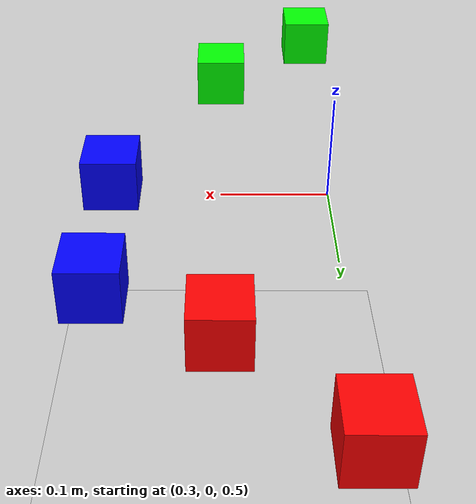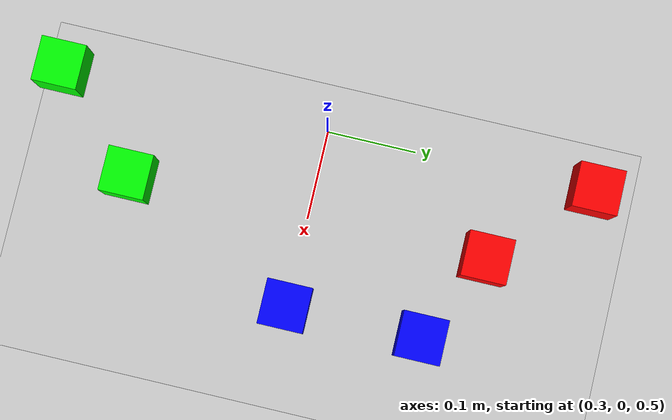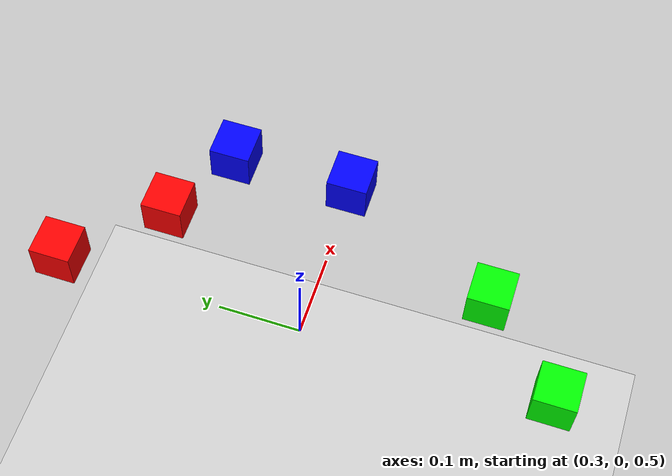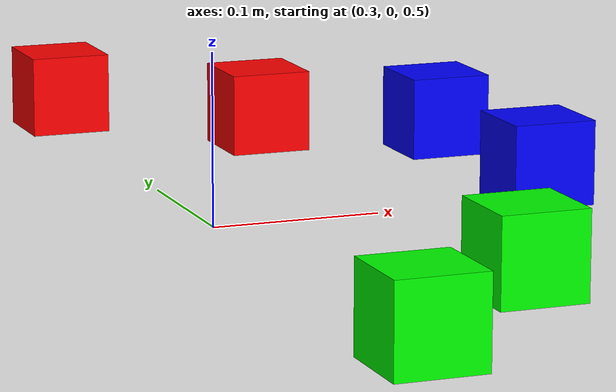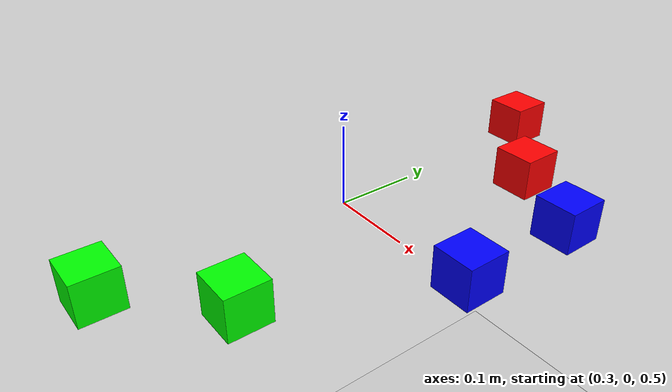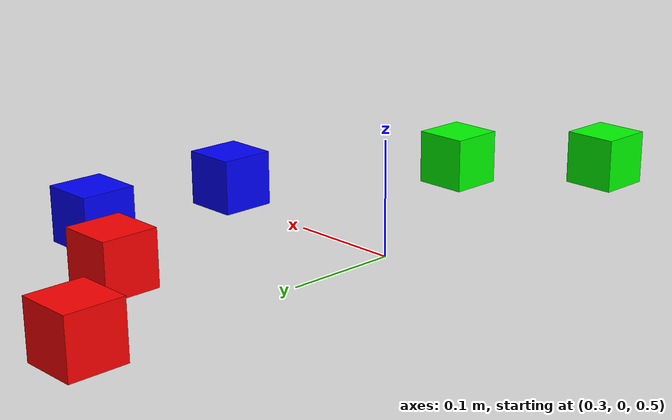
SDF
<?xml version="1.0" ?>
<sdf version="1.7">
  <world name="default">
    <!-- gravity is on by default, but being explicit is fine -->
    <gravity>0 0 -9.81</gravity>

    <!-- Light -->
    <include>
      <uri>https://fuel.gazebosim.org/1.0/openrobotics/models/Sun</uri>
    </include>

    <!-- Static floor with collision -->
    <include>
      <uri>https://fuel.gazebosim.org/1.0/openrobotics/models/Ground Plane</uri>
    </include>

  <gui fullscreen="0">
    <camera name="user_camera">
      <!-- x y z roll pitch yaw -->
      <pose>1.2 -0.8 1.0 0 0.35 2.4</pose>
    </camera>
  </gui>

    <!-- 5x5x5 cm cubes around the robot in alternating RGB -->
    <model name="cube_red_1">
      <static>false</static>
      <pose>0.4 0.2 0.525 0 0 0</pose>
      <link name="link">
        <inertial><mass>0.05</mass></inertial>
        <collision name="col"><geometry><box><size>0.05 0.05 0.05</size></box></geometry></collision>
        <visual name="vis"><geometry><box><size>0.05 0.05 0.05</size></box></geometry>
          <material><ambient>1 0 0 1</ambient><diffuse>1 0 0 1</diffuse></material>
        </visual>
      </link>
    </model>

    <model name="cube_green_1">
      <static>false</static>
      <pose>0.4 -0.2 0.525 0 0 0</pose>
      <link name="link">
        <inertial><mass>0.05</mass></inertial>
        <collision name="col"><geometry><box><size>0.05 0.05 0.05</size></box></geometry></collision>
        <visual name="vis"><geometry><box><size>0.05 0.05 0.05</size></box></geometry>
          <material><ambient>0 1 0 1</ambient><diffuse>0 1 0 1</diffuse></material>
        </visual>
      </link>
    </model>

    <model name="cube_blue_1">
      <static>false</static>
      <pose>0.5 0.0 0.525 0 0 0</pose>
      <link name="link">
        <inertial><mass>0.05</mass></inertial>
        <collision name="col"><geometry><box><size>0.05 0.05 0.05</size></box></geometry></collision>
        <visual name="vis"><geometry><box><size>0.05 0.05 0.05</size></box></geometry>
          <material><ambient>0 0 1 1</ambient><diffuse>0 0 1 1</diffuse></material>
        </visual>
      </link>
    </model>

    <model name="cube_red_2">
      <static>false</static>
      <pose>0.3 0.3 0.525 0 0 0</pose>
      <link name="link">
        <inertial><mass>0.05</mass></inertial>
        <collision name="col"><geometry><box><size>0.05 0.05 0.05</size></box></geometry></collision>
        <visual name="vis"><geometry><box><size>0.05 0.05 0.05</size></box></geometry>
          <material><ambient>1 0 0 1</ambient><diffuse>1 0 0 1</diffuse></material>
        </visual>
      </link>
    </model>

    <model name="cube_green_2">
      <static>false</static>
      <pose>0.3 -0.3 0.525 0 0 0</pose>
      <link name="link">
        <inertial><mass>0.05</mass></inertial>
        <collision name="col"><geometry><box><size>0.05 0.05 0.05</size></box></geometry></collision>
        <visual name="vis"><geometry><box><size>0.05 0.05 0.05</size></box></geometry>
          <material><ambient>0 1 0 1</ambient><diffuse>0 1 0 1</diffuse></material>
        </visual>
      </link>
    </model>

    <model name="cube_blue_2">
      <static>false</static>
      <pose>0.5 0.15 0.525 0 0 0</pose>
      <link name="link">
        <inertial><mass>0.05</mass></inertial>
        <collision name="col"><geometry><box><size>0.05 0.05 0.05</size></box></geometry></collision>
        <visual name="vis"><geometry><box><size>0.05 0.05 0.05</size></box></geometry>
          <material><ambient>0 0 1 1</ambient><diffuse>0 0 1 1</diffuse></material>
        </visual>
      </link>
    </model>
  </world>
</sdf>
